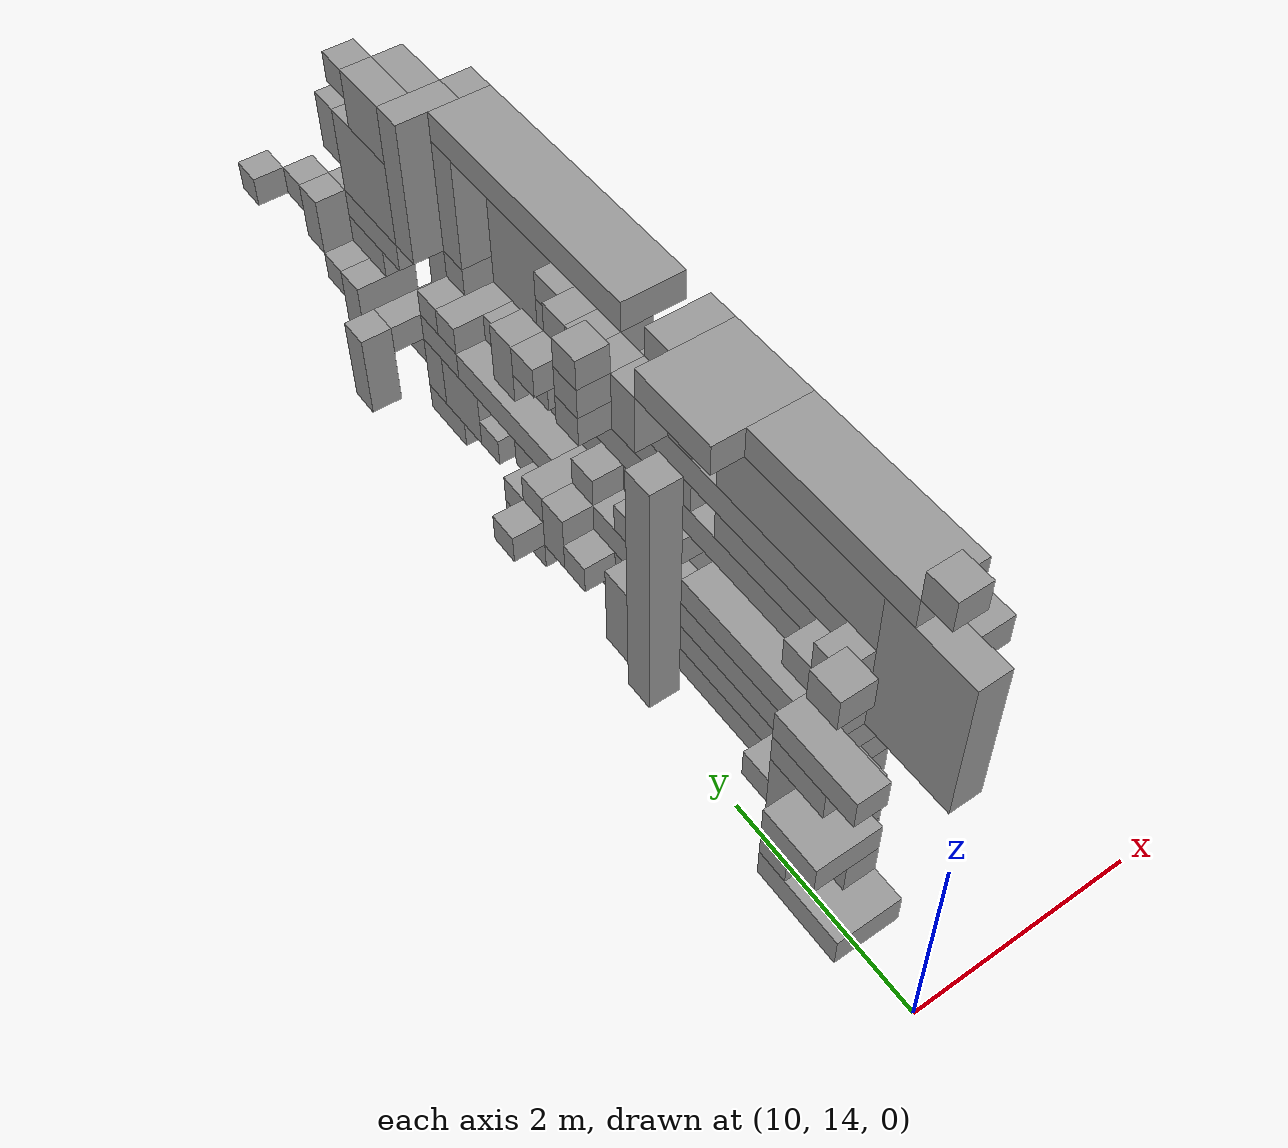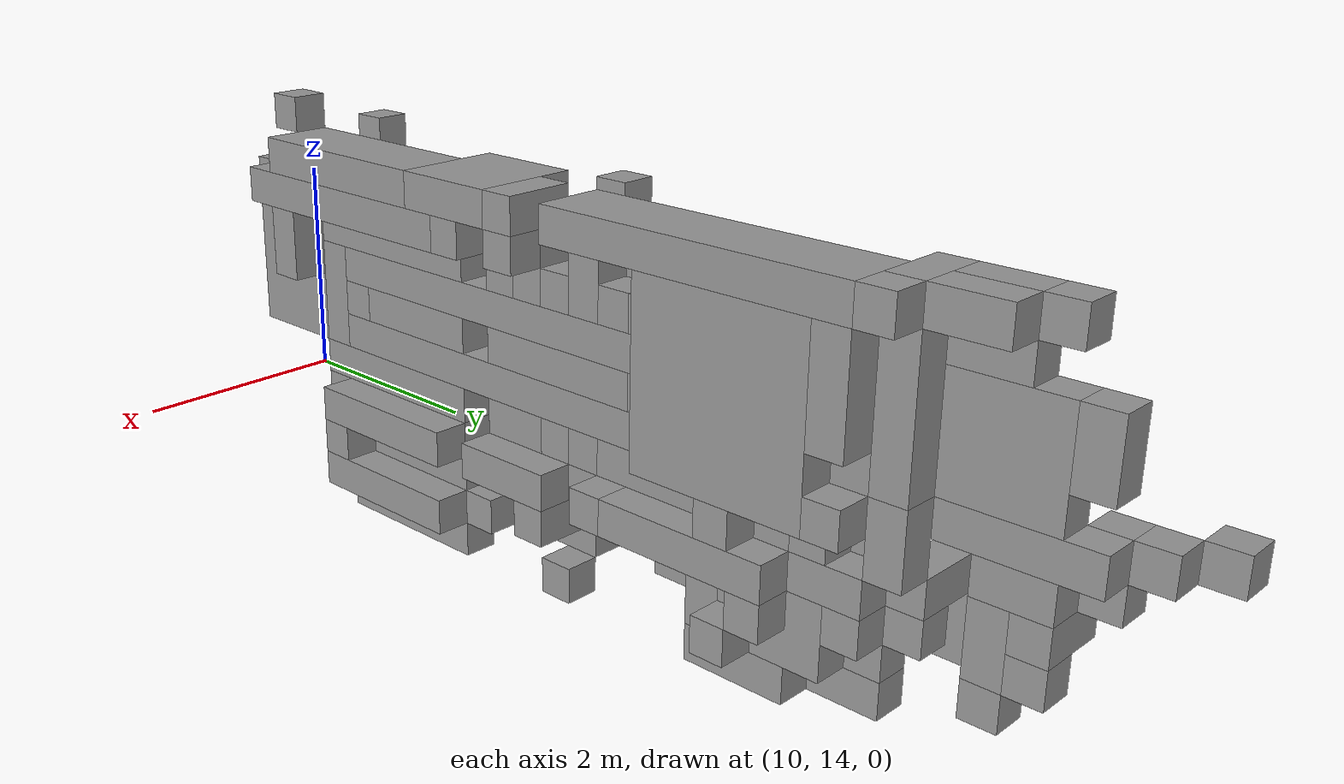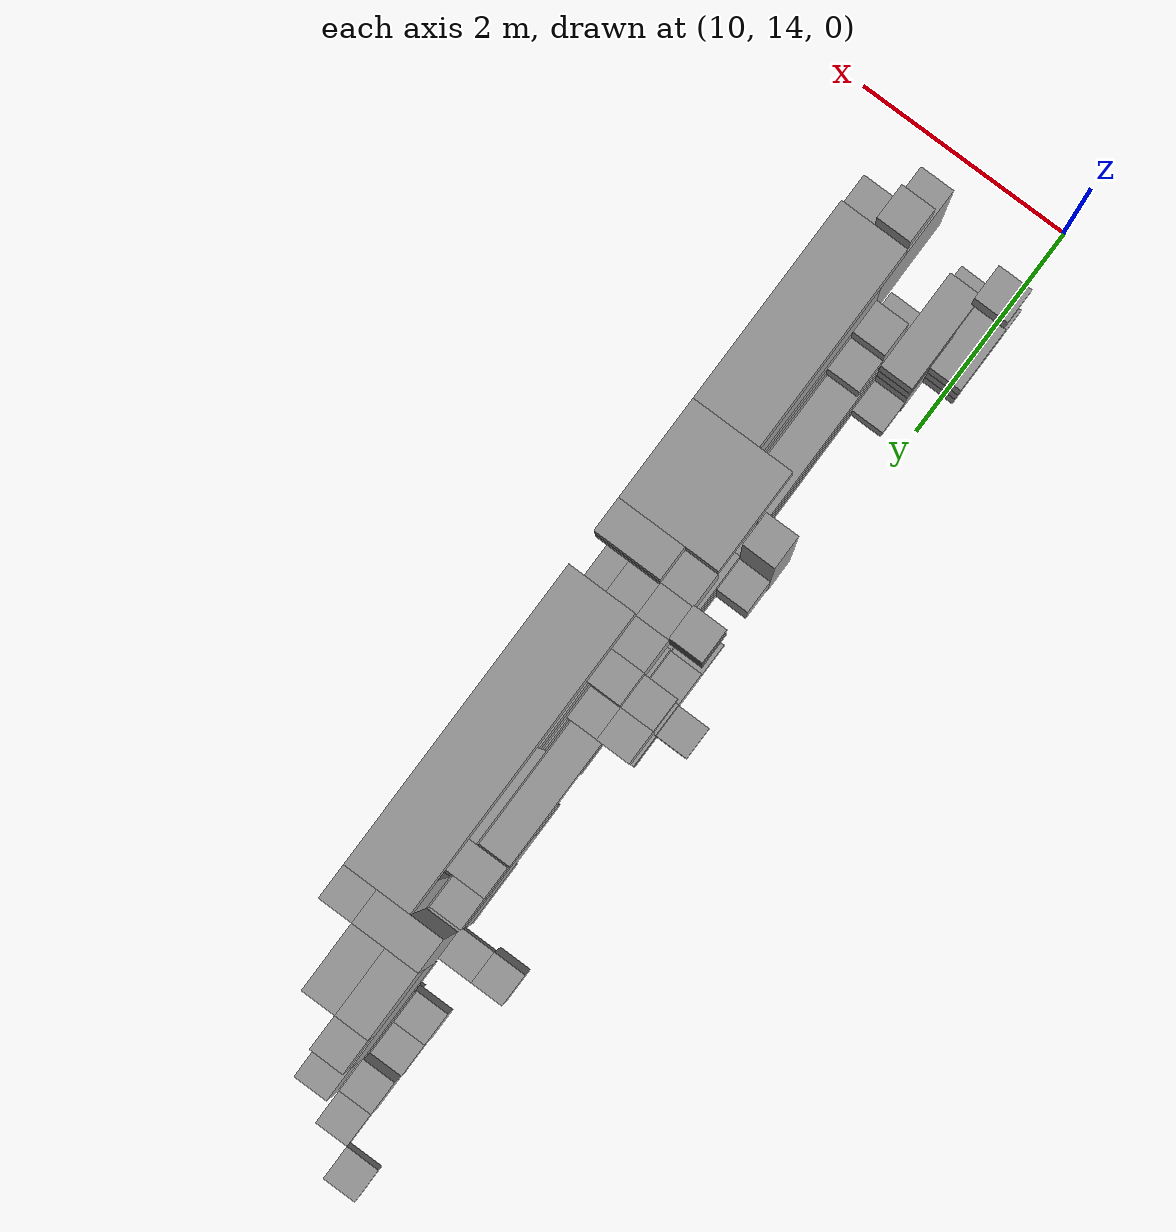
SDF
<sdf version="1.6">
 <world name="bt_world">
  <include><uri>model://sun</uri></include>
  <model name="obstacle_2677">
   <static>true</static>
   <pose>10.2 15.149999999999999 -0.15 0 0 0</pose>
   <link name="link">
    <collision name="collision">
     <geometry><box><size>0.6 0.8999999999999999 0.3</size></box></geometry>
    </collision>
    <visual name="visual">
     <geometry><box><size>0.6 0.8999999999999999 0.3</size></box></geometry>
     <material><ambient>0.5 0.5 0.5 1</ambient><diffuse>0.6 0.6 0.6 1</diffuse></material>
    </visual>
   </link>
  </model>
  <model name="obstacle_2679">
   <static>true</static>
   <pose>10.2 15.299999999999999 0.44999999999999996 0 0 0</pose>
   <link name="link">
    <collision name="collision"><geometry><box><size>0.6 0.6 0.3</size></box></geometry></collision>
    <visual name="visual">
     <geometry><box><size>0.6 0.6 0.3</size></box></geometry>
     <material><ambient>0.5 0.5 0.5 1</ambient><diffuse>0.6 0.6 0.6 1</diffuse></material>
    </visual>
   </link>
  </model>
  <model name="obstacle_2681">
   <static>true</static>
   <pose>10.049999999999999 15.149999999999999 2.55 0 0 0</pose>
   <link name="link">
    <collision name="collision"><geometry><box><size>0.3 0.3 0.3</size></box></geometry></collision>
    <visual name="visual">
     <geometry><box><size>0.3 0.3 0.3</size></box></geometry>
     <material><ambient>0.5 0.5 0.5 1</ambient><diffuse>0.6 0.6 0.6 1</diffuse></material>
    </visual>
   </link>
  </model>
  <model name="obstacle_2682">
   <static>true</static>
   <pose>10.35 15.45 0.15 0 0 0</pose>
   <link name="link">
    <collision name="collision">
     <geometry><box><size>0.8999999999999999 0.3 0.3</size></box></geometry>
    </collision>
    <visual name="visual">
     <geometry><box><size>0.8999999999999999 0.3 0.3</size></box></geometry>
     <material><ambient>0.5 0.5 0.5 1</ambient><diffuse>0.6 0.6 0.6 1</diffuse></material>
    </visual>
   </link>
  </model>
  <model name="obstacle_2683">
   <static>true</static>
   <pose>10.35 19.05 0.15 0 0 0</pose>
   <link name="link">
    <collision name="collision">
     <geometry><box><size>0.8999999999999999 0.3 0.3</size></box></geometry>
    </collision>
    <visual name="visual">
     <geometry><box><size>0.8999999999999999 0.3 0.3</size></box></geometry>
     <material><ambient>0.5 0.5 0.5 1</ambient><diffuse>0.6 0.6 0.6 1</diffuse></material>
    </visual>
   </link>
  </model>
  <model name="obstacle_2684">
   <static>true</static>
   <pose>10.049999999999999 21.45 0.15 0 0 0</pose>
   <link name="link">
    <collision name="collision">
     <geometry><box><size>0.3 0.3 0.8999999999999999</size></box></geometry>
    </collision>
    <visual name="visual">
     <geometry><box><size>0.3 0.3 0.8999999999999999</size></box></geometry>
     <material><ambient>0.5 0.5 0.5 1</ambient><diffuse>0.6 0.6 0.6 1</diffuse></material>
    </visual>
   </link>
  </model>
  <model name="obstacle_2685">
   <static>true</static>
   <pose>10.049999999999999 23.25 1.05 0 0 0</pose>
   <link name="link">
    <collision name="collision"><geometry><box><size>0.3 0.3 0.3</size></box></geometry></collision>
    <visual name="visual">
     <geometry><box><size>0.3 0.3 0.3</size></box></geometry>
     <material><ambient>0.5 0.5 0.5 1</ambient><diffuse>0.6 0.6 0.6 1</diffuse></material>
    </visual>
   </link>
  </model>
  <model name="obstacle_2688">
   <static>true</static>
   <pose>10.35 15.149999999999999 0.15 0 0 0</pose>
   <link name="link">
    <collision name="collision"><geometry><box><size>0.3 0.3 0.3</size></box></geometry></collision>
    <visual name="visual">
     <geometry><box><size>0.3 0.3 0.3</size></box></geometry>
     <material><ambient>0.5 0.5 0.5 1</ambient><diffuse>0.6 0.6 0.6 1</diffuse></material>
    </visual>
   </link>
  </model>
  <model name="obstacle_2689">
   <static>true</static>
   <pose>10.35 15.45 1.05 0 0 0</pose>
   <link name="link">
    <collision name="collision">
     <geometry><box><size>0.3 0.8999999999999999 0.3</size></box></geometry>
    </collision>
    <visual name="visual">
     <geometry><box><size>0.3 0.8999999999999999 0.3</size></box></geometry>
     <material><ambient>0.5 0.5 0.5 1</ambient><diffuse>0.6 0.6 0.6 1</diffuse></material>
    </visual>
   </link>
  </model>
  <model name="obstacle_2690">
   <static>true</static>
   <pose>10.35 15.6 0.75 0 0 0</pose>
   <link name="link">
    <collision name="collision"><geometry><box><size>0.3 0.6 0.3</size></box></geometry></collision>
    <visual name="visual">
     <geometry><box><size>0.3 0.6 0.3</size></box></geometry>
     <material><ambient>0.5 0.5 0.5 1</ambient><diffuse>0.6 0.6 0.6 1</diffuse></material>
    </visual>
   </link>
  </model>
  <model name="obstacle_2691">
   <static>true</static>
   <pose>10.35 15.75 0.15 0 0 0</pose>
   <link name="link">
    <collision name="collision">
     <geometry><box><size>0.3 0.3 0.8999999999999999</size></box></geometry>
    </collision>
    <visual name="visual">
     <geometry><box><size>0.3 0.3 0.8999999999999999</size></box></geometry>
     <material><ambient>0.5 0.5 0.5 1</ambient><diffuse>0.6 0.6 0.6 1</diffuse></material>
    </visual>
   </link>
  </model>
  <model name="obstacle_2692">
   <static>true</static>
   <pose>10.799999999999999 16.05 0.15 0 0 0</pose>
   <link name="link">
    <collision name="collision"><geometry><box><size>1.2 0.3 0.3</size></box></geometry></collision>
    <visual name="visual">
     <geometry><box><size>1.2 0.3 0.3</size></box></geometry>
     <material><ambient>0.5 0.5 0.5 1</ambient><diffuse>0.6 0.6 0.6 1</diffuse></material>
    </visual>
   </link>
  </model>
  <model name="obstacle_2693">
   <static>true</static>
   <pose>10.35 17.55 0.75 0 0 0</pose>
   <link name="link">
    <collision name="collision">
     <geometry><box><size>0.3 0.3 2.6999999999999997</size></box></geometry>
    </collision>
    <visual name="visual">
     <geometry><box><size>0.3 0.3 2.6999999999999997</size></box></geometry>
     <material><ambient>0.5 0.5 0.5 1</ambient><diffuse>0.6 0.6 0.6 1</diffuse></material>
    </visual>
   </link>
  </model>
  <model name="obstacle_2694">
   <static>true</static>
   <pose>10.35 17.849999999999998 0.15 0 0 0</pose>
   <link name="link">
    <collision name="collision">
     <geometry><box><size>0.3 0.3 0.8999999999999999</size></box></geometry>
    </collision>
    <visual name="visual">
     <geometry><box><size>0.3 0.3 0.8999999999999999</size></box></geometry>
     <material><ambient>0.5 0.5 0.5 1</ambient><diffuse>0.6 0.6 0.6 1</diffuse></material>
    </visual>
   </link>
  </model>
  <model name="obstacle_2695">
   <static>true</static>
   <pose>10.799999999999999 18.45 0.15 0 0 0</pose>
   <link name="link">
    <collision name="collision"><geometry><box><size>1.2 0.3 0.3</size></box></geometry></collision>
    <visual name="visual">
     <geometry><box><size>1.2 0.3 0.3</size></box></geometry>
     <material><ambient>0.5 0.5 0.5 1</ambient><diffuse>0.6 0.6 0.6 1</diffuse></material>
    </visual>
   </link>
  </model>
  <model name="obstacle_2696">
   <static>true</static>
   <pose>10.65 18.45 1.95 0 0 0</pose>
   <link name="link">
    <collision name="collision">
     <geometry><box><size>0.8999999999999999 0.3 0.3</size></box></geometry>
    </collision>
    <visual name="visual">
     <geometry><box><size>0.8999999999999999 0.3 0.3</size></box></geometry>
     <material><ambient>0.5 0.5 0.5 1</ambient><diffuse>0.6 0.6 0.6 1</diffuse></material>
    </visual>
   </link>
  </model>
  <model name="obstacle_2697">
   <static>true</static>
   <pose>10.5 18.45 2.25 0 0 0</pose>
   <link name="link">
    <collision name="collision"><geometry><box><size>0.6 0.3 0.3</size></box></geometry></collision>
    <visual name="visual">
     <geometry><box><size>0.6 0.3 0.3</size></box></geometry>
     <material><ambient>0.5 0.5 0.5 1</ambient><diffuse>0.6 0.6 0.6 1</diffuse></material>
    </visual>
   </link>
  </model>
  <model name="obstacle_2698">
   <static>true</static>
   <pose>10.35 18.45 2.55 0 0 0</pose>
   <link name="link">
    <collision name="collision"><geometry><box><size>0.3 0.3 0.3</size></box></geometry></collision>
    <visual name="visual">
     <geometry><box><size>0.3 0.3 0.3</size></box></geometry>
     <material><ambient>0.5 0.5 0.5 1</ambient><diffuse>0.6 0.6 0.6 1</diffuse></material>
    </visual>
   </link>
  </model>
  <model name="obstacle_2699">
   <static>true</static>
   <pose>10.5 18.75 0.3 0 0 0</pose>
   <link name="link">
    <collision name="collision"><geometry><box><size>0.6 0.3 0.6</size></box></geometry></collision>
    <visual name="visual">
     <geometry><box><size>0.6 0.3 0.6</size></box></geometry>
     <material><ambient>0.5 0.5 0.5 1</ambient><diffuse>0.6 0.6 0.6 1</diffuse></material>
    </visual>
   </link>
  </model>
  <model name="obstacle_2700">
   <static>true</static>
   <pose>10.35 19.2 -0.15 0 0 0</pose>
   <link name="link">
    <collision name="collision"><geometry><box><size>0.3 0.6 0.3</size></box></geometry></collision>
    <visual name="visual">
     <geometry><box><size>0.3 0.6 0.3</size></box></geometry>
     <material><ambient>0.5 0.5 0.5 1</ambient><diffuse>0.6 0.6 0.6 1</diffuse></material>
    </visual>
   </link>
  </model>
  <model name="obstacle_2701">
   <static>true</static>
   <pose>10.799999999999999 19.05 0.44999999999999996 0 0 0</pose>
   <link name="link">
    <collision name="collision"><geometry><box><size>1.2 0.3 0.3</size></box></geometry></collision>
    <visual name="visual">
     <geometry><box><size>1.2 0.3 0.3</size></box></geometry>
     <material><ambient>0.5 0.5 0.5 1</ambient><diffuse>0.6 0.6 0.6 1</diffuse></material>
    </visual>
   </link>
  </model>
  <model name="obstacle_2702">
   <static>true</static>
   <pose>10.65 19.05 1.95 0 0 0</pose>
   <link name="link">
    <collision name="collision">
     <geometry><box><size>0.8999999999999999 0.3 0.3</size></box></geometry>
    </collision>
    <visual name="visual">
     <geometry><box><size>0.8999999999999999 0.3 0.3</size></box></geometry>
     <material><ambient>0.5 0.5 0.5 1</ambient><diffuse>0.6 0.6 0.6 1</diffuse></material>
    </visual>
   </link>
  </model>
  <model name="obstacle_2703">
   <static>true</static>
   <pose>10.5 19.349999999999998 0.15 0 0 0</pose>
   <link name="link">
    <collision name="collision"><geometry><box><size>0.6 0.3 0.3</size></box></geometry></collision>
    <visual name="visual">
     <geometry><box><size>0.6 0.3 0.3</size></box></geometry>
     <material><ambient>0.5 0.5 0.5 1</ambient><diffuse>0.6 0.6 0.6 1</diffuse></material>
    </visual>
   </link>
  </model>
  <model name="obstacle_2704">
   <static>true</static>
   <pose>10.35 19.349999999999998 1.7999999999999998 0 0 0</pose>
   <link name="link">
    <collision name="collision"><geometry><box><size>0.3 0.3 0.6</size></box></geometry></collision>
    <visual name="visual">
     <geometry><box><size>0.3 0.3 0.6</size></box></geometry>
     <material><ambient>0.5 0.5 0.5 1</ambient><diffuse>0.6 0.6 0.6 1</diffuse></material>
    </visual>
   </link>
  </model>
  <model name="obstacle_2705">
   <static>true</static>
   <pose>10.5 21.45 0.44999999999999996 0 0 0</pose>
   <link name="link">
    <collision name="collision"><geometry><box><size>0.6 0.3 0.3</size></box></geometry></collision>
    <visual name="visual">
     <geometry><box><size>0.6 0.3 0.3</size></box></geometry>
     <material><ambient>0.5 0.5 0.5 1</ambient><diffuse>0.6 0.6 0.6 1</diffuse></material>
    </visual>
   </link>
  </model>
  <model name="obstacle_2706">
   <static>true</static>
   <pose>10.5 22.05 0.3 0 0 0</pose>
   <link name="link">
    <collision name="collision"><geometry><box><size>0.6 0.3 0.6</size></box></geometry></collision>
    <visual name="visual">
     <geometry><box><size>0.6 0.3 0.6</size></box></geometry>
     <material><ambient>0.5 0.5 0.5 1</ambient><diffuse>0.6 0.6 0.6 1</diffuse></material>
    </visual>
   </link>
  </model>
  <model name="obstacle_2707">
   <static>true</static>
   <pose>10.5 22.349999999999998 0.44999999999999996 0 0 0</pose>
   <link name="link">
    <collision name="collision"><geometry><box><size>0.6 0.3 0.3</size></box></geometry></collision>
    <visual name="visual">
     <geometry><box><size>0.6 0.3 0.3</size></box></geometry>
     <material><ambient>0.5 0.5 0.5 1</ambient><diffuse>0.6 0.6 0.6 1</diffuse></material>
    </visual>
   </link>
  </model>
  <model name="obstacle_2708">
   <static>true</static>
   <pose>10.35 22.65 0.8999999999999999 0 0 0</pose>
   <link name="link">
    <collision name="collision"><geometry><box><size>0.3 0.3 0.6</size></box></geometry></collision>
    <visual name="visual">
     <geometry><box><size>0.3 0.3 0.6</size></box></geometry>
     <material><ambient>0.5 0.5 0.5 1</ambient><diffuse>0.6 0.6 0.6 1</diffuse></material>
    </visual>
   </link>
  </model>
  <model name="obstacle_2709">
   <static>true</static>
   <pose>10.35 22.95 1.05 0 0 0</pose>
   <link name="link">
    <collision name="collision"><geometry><box><size>0.3 0.3 0.3</size></box></geometry></collision>
    <visual name="visual">
     <geometry><box><size>0.3 0.3 0.3</size></box></geometry>
     <material><ambient>0.5 0.5 0.5 1</ambient><diffuse>0.6 0.6 0.6 1</diffuse></material>
    </visual>
   </link>
  </model>
  <model name="obstacle_2717">
   <static>true</static>
   <pose>10.65 15.45 -0.15 0 0 0</pose>
   <link name="link">
    <collision name="collision"><geometry><box><size>0.3 0.3 0.3</size></box></geometry></collision>
    <visual name="visual">
     <geometry><box><size>0.3 0.3 0.3</size></box></geometry>
     <material><ambient>0.5 0.5 0.5 1</ambient><diffuse>0.6 0.6 0.6 1</diffuse></material>
    </visual>
   </link>
  </model>
  <model name="obstacle_2718">
   <static>true</static>
   <pose>10.65 16.95 0.44999999999999996 0 0 0</pose>
   <link name="link">
    <collision name="collision"><geometry><box><size>0.3 3.3 0.3</size></box></geometry></collision>
    <visual name="visual">
     <geometry><box><size>0.3 3.3 0.3</size></box></geometry>
     <material><ambient>0.5 0.5 0.5 1</ambient><diffuse>0.6 0.6 0.6 1</diffuse></material>
    </visual>
   </link>
  </model>
  <model name="obstacle_2719">
   <static>true</static>
   <pose>10.799999999999999 15.75 0.15 0 0 0</pose>
   <link name="link">
    <collision name="collision"><geometry><box><size>0.6 0.3 0.3</size></box></geometry></collision>
    <visual name="visual">
     <geometry><box><size>0.6 0.3 0.3</size></box></geometry>
     <material><ambient>0.5 0.5 0.5 1</ambient><diffuse>0.6 0.6 0.6 1</diffuse></material>
    </visual>
   </link>
  </model>
  <model name="obstacle_2720">
   <static>true</static>
   <pose>10.799999999999999 16.5 0.75 0 0 0</pose>
   <link name="link">
    <collision name="collision">
     <geometry><box><size>0.6 1.7999999999999998 0.3</size></box></geometry>
    </collision>
    <visual name="visual">
     <geometry><box><size>0.6 1.7999999999999998 0.3</size></box></geometry>
     <material><ambient>0.5 0.5 0.5 1</ambient><diffuse>0.6 0.6 0.6 1</diffuse></material>
    </visual>
   </link>
  </model>
  <model name="obstacle_2721">
   <static>true</static>
   <pose>10.799999999999999 15.75 1.3499999999999999 0 0 0</pose>
   <link name="link">
    <collision name="collision">
     <geometry><box><size>0.6 0.3 0.8999999999999999</size></box></geometry>
    </collision>
    <visual name="visual">
     <geometry><box><size>0.6 0.3 0.8999999999999999</size></box></geometry>
     <material><ambient>0.5 0.5 0.5 1</ambient><diffuse>0.6 0.6 0.6 1</diffuse></material>
    </visual>
   </link>
  </model>
  <model name="obstacle_2722">
   <static>true</static>
   <pose>10.95 16.65 -0.15 0 0 0</pose>
   <link name="link">
    <collision name="collision">
     <geometry><box><size>0.8999999999999999 1.5 0.3</size></box></geometry>
    </collision>
    <visual name="visual">
     <geometry><box><size>0.8999999999999999 1.5 0.3</size></box></geometry>
     <material><ambient>0.5 0.5 0.5 1</ambient><diffuse>0.6 0.6 0.6 1</diffuse></material>
    </visual>
   </link>
  </model>
  <model name="obstacle_2723">
   <static>true</static>
   <pose>10.799999999999999 16.05 1.3499999999999999 0 0 0</pose>
   <link name="link">
    <collision name="collision"><geometry><box><size>0.6 0.3 0.3</size></box></geometry></collision>
    <visual name="visual">
     <geometry><box><size>0.6 0.3 0.3</size></box></geometry>
     <material><ambient>0.5 0.5 0.5 1</ambient><diffuse>0.6 0.6 0.6 1</diffuse></material>
    </visual>
   </link>
  </model>
  <model name="obstacle_2724">
   <static>true</static>
   <pose>10.799999999999999 16.8 0.15 0 0 0</pose>
   <link name="link">
    <collision name="collision"><geometry><box><size>0.6 1.2 0.3</size></box></geometry></collision>
    <visual name="visual">
     <geometry><box><size>0.6 1.2 0.3</size></box></geometry>
     <material><ambient>0.5 0.5 0.5 1</ambient><diffuse>0.6 0.6 0.6 1</diffuse></material>
    </visual>
   </link>
  </model>
  <model name="obstacle_2725">
   <static>true</static>
   <pose>10.95 17.55 2.55 0 0 0</pose>
   <link name="link">
    <collision name="collision">
     <geometry><box><size>0.8999999999999999 0.8999999999999999 0.3</size></box></geometry>
    </collision>
    <visual name="visual">
     <geometry><box><size>0.8999999999999999 0.8999999999999999 0.3</size></box></geometry>
     <material><ambient>0.5 0.5 0.5 1</ambient><diffuse>0.6 0.6 0.6 1</diffuse></material>
    </visual>
   </link>
  </model>
  <model name="obstacle_2726">
   <static>true</static>
   <pose>10.65 17.849999999999998 0.15 0 0 0</pose>
   <link name="link">
    <collision name="collision">
     <geometry><box><size>0.3 0.8999999999999999 0.3</size></box></geometry>
    </collision>
    <visual name="visual">
     <geometry><box><size>0.3 0.8999999999999999 0.3</size></box></geometry>
     <material><ambient>0.5 0.5 0.5 1</ambient><diffuse>0.6 0.6 0.6 1</diffuse></material>
    </visual>
   </link>
  </model>
  <model name="obstacle_2727">
   <static>true</static>
   <pose>10.799999999999999 18.0 0.75 0 0 0</pose>
   <link name="link">
    <collision name="collision"><geometry><box><size>0.6 0.6 0.3</size></box></geometry></collision>
    <visual name="visual">
     <geometry><box><size>0.6 0.6 0.3</size></box></geometry>
     <material><ambient>0.5 0.5 0.5 1</ambient><diffuse>0.6 0.6 0.6 1</diffuse></material>
    </visual>
   </link>
  </model>
  <model name="obstacle_2728">
   <static>true</static>
   <pose>10.65 18.3 -0.15 0 0 0</pose>
   <link name="link">
    <collision name="collision"><geometry><box><size>0.3 0.6 0.3</size></box></geometry></collision>
    <visual name="visual">
     <geometry><box><size>0.3 0.6 0.3</size></box></geometry>
     <material><ambient>0.5 0.5 0.5 1</ambient><diffuse>0.6 0.6 0.6 1</diffuse></material>
    </visual>
   </link>
  </model>
  <model name="obstacle_2729">
   <static>true</static>
   <pose>10.799999999999999 18.15 2.1 0 0 0</pose>
   <link name="link">
    <collision name="collision"><geometry><box><size>0.6 0.3 0.6</size></box></geometry></collision>
    <visual name="visual">
     <geometry><box><size>0.6 0.3 0.6</size></box></geometry>
     <material><ambient>0.5 0.5 0.5 1</ambient><diffuse>0.6 0.6 0.6 1</diffuse></material>
    </visual>
   </link>
  </model>
  <model name="obstacle_2730">
   <static>true</static>
   <pose>10.799999999999999 18.75 0.75 0 0 0</pose>
   <link name="link">
    <collision name="collision"><geometry><box><size>0.6 0.3 0.3</size></box></geometry></collision>
    <visual name="visual">
     <geometry><box><size>0.6 0.3 0.3</size></box></geometry>
     <material><ambient>0.5 0.5 0.5 1</ambient><diffuse>0.6 0.6 0.6 1</diffuse></material>
    </visual>
   </link>
  </model>
  <model name="obstacle_2731">
   <static>true</static>
   <pose>10.799999999999999 18.75 2.1 0 0 0</pose>
   <link name="link">
    <collision name="collision"><geometry><box><size>0.6 0.3 0.6</size></box></geometry></collision>
    <visual name="visual">
     <geometry><box><size>0.6 0.3 0.6</size></box></geometry>
     <material><ambient>0.5 0.5 0.5 1</ambient><diffuse>0.6 0.6 0.6 1</diffuse></material>
    </visual>
   </link>
  </model>
  <model name="obstacle_2732">
   <static>true</static>
   <pose>10.65 19.05 2.25 0 0 0</pose>
   <link name="link">
    <collision name="collision"><geometry><box><size>0.3 0.3 0.3</size></box></geometry></collision>
    <visual name="visual">
     <geometry><box><size>0.3 0.3 0.3</size></box></geometry>
     <material><ambient>0.5 0.5 0.5 1</ambient><diffuse>0.6 0.6 0.6 1</diffuse></material>
    </visual>
   </link>
  </model>
  <model name="obstacle_2733">
   <static>true</static>
   <pose>10.95 19.95 0.44999999999999996 0 0 0</pose>
   <link name="link">
    <collision name="collision">
     <geometry><box><size>0.8999999999999999 1.5 0.3</size></box></geometry>
    </collision>
    <visual name="visual">
     <geometry><box><size>0.8999999999999999 1.5 0.3</size></box></geometry>
     <material><ambient>0.5 0.5 0.5 1</ambient><diffuse>0.6 0.6 0.6 1</diffuse></material>
    </visual>
   </link>
  </model>
  <model name="obstacle_2734">
   <static>true</static>
   <pose>10.799999999999999 19.349999999999998 1.3499999999999999 0 0 0</pose>
   <link name="link">
    <collision name="collision"><geometry><box><size>0.6 0.3 0.3</size></box></geometry></collision>
    <visual name="visual">
     <geometry><box><size>0.6 0.3 0.3</size></box></geometry>
     <material><ambient>0.5 0.5 0.5 1</ambient><diffuse>0.6 0.6 0.6 1</diffuse></material>
    </visual>
   </link>
  </model>
  <model name="obstacle_2735">
   <static>true</static>
   <pose>10.799999999999999 19.65 0.15 0 0 0</pose>
   <link name="link">
    <collision name="collision"><geometry><box><size>0.6 0.3 0.3</size></box></geometry></collision>
    <visual name="visual">
     <geometry><box><size>0.6 0.3 0.3</size></box></geometry>
     <material><ambient>0.5 0.5 0.5 1</ambient><diffuse>0.6 0.6 0.6 1</diffuse></material>
    </visual>
   </link>
  </model>
  <model name="obstacle_2736">
   <static>true</static>
   <pose>10.95 20.25 -0.15 0 0 0</pose>
   <link name="link">
    <collision name="collision">
     <geometry><box><size>0.8999999999999999 0.3 0.3</size></box></geometry>
    </collision>
    <visual name="visual">
     <geometry><box><size>0.8999999999999999 0.3 0.3</size></box></geometry>
     <material><ambient>0.5 0.5 0.5 1</ambient><diffuse>0.6 0.6 0.6 1</diffuse></material>
    </visual>
   </link>
  </model>
  <model name="obstacle_2737">
   <static>true</static>
   <pose>10.799999999999999 20.7 0.0 0 0 0</pose>
   <link name="link">
    <collision name="collision"><geometry><box><size>0.6 0.6 0.6</size></box></geometry></collision>
    <visual name="visual">
     <geometry><box><size>0.6 0.6 0.6</size></box></geometry>
     <material><ambient>0.5 0.5 0.5 1</ambient><diffuse>0.6 0.6 0.6 1</diffuse></material>
    </visual>
   </link>
  </model>
  <model name="obstacle_2738">
   <static>true</static>
   <pose>10.65 21.0 -0.44999999999999996 0 0 0</pose>
   <link name="link">
    <collision name="collision"><geometry><box><size>0.3 0.6 0.3</size></box></geometry></collision>
    <visual name="visual">
     <geometry><box><size>0.3 0.6 0.3</size></box></geometry>
     <material><ambient>0.5 0.5 0.5 1</ambient><diffuse>0.6 0.6 0.6 1</diffuse></material>
    </visual>
   </link>
  </model>
  <model name="obstacle_2739">
   <static>true</static>
   <pose>10.799999999999999 21.0 0.44999999999999996 0 0 0</pose>
   <link name="link">
    <collision name="collision"><geometry><box><size>0.6 0.6 0.3</size></box></geometry></collision>
    <visual name="visual">
     <geometry><box><size>0.6 0.6 0.3</size></box></geometry>
     <material><ambient>0.5 0.5 0.5 1</ambient><diffuse>0.6 0.6 0.6 1</diffuse></material>
    </visual>
   </link>
  </model>
  <model name="obstacle_2740">
   <static>true</static>
   <pose>10.799999999999999 20.849999999999998 0.75 0 0 0</pose>
   <link name="link">
    <collision name="collision"><geometry><box><size>0.6 0.3 0.3</size></box></geometry></collision>
    <visual name="visual">
     <geometry><box><size>0.6 0.3 0.3</size></box></geometry>
     <material><ambient>0.5 0.5 0.5 1</ambient><diffuse>0.6 0.6 0.6 1</diffuse></material>
    </visual>
   </link>
  </model>
  <model name="obstacle_2741">
   <static>true</static>
   <pose>10.65 21.15 0.0 0 0 0</pose>
   <link name="link">
    <collision name="collision"><geometry><box><size>0.3 0.3 0.6</size></box></geometry></collision>
    <visual name="visual">
     <geometry><box><size>0.3 0.3 0.6</size></box></geometry>
     <material><ambient>0.5 0.5 0.5 1</ambient><diffuse>0.6 0.6 0.6 1</diffuse></material>
    </visual>
   </link>
  </model>
  <model name="obstacle_2742">
   <static>true</static>
   <pose>10.65 21.15 0.75 0 0 0</pose>
   <link name="link">
    <collision name="collision"><geometry><box><size>0.3 0.3 0.3</size></box></geometry></collision>
    <visual name="visual">
     <geometry><box><size>0.3 0.3 0.3</size></box></geometry>
     <material><ambient>0.5 0.5 0.5 1</ambient><diffuse>0.6 0.6 0.6 1</diffuse></material>
    </visual>
   </link>
  </model>
  <model name="obstacle_2743">
   <static>true</static>
   <pose>10.65 21.45 0.15 0 0 0</pose>
   <link name="link">
    <collision name="collision"><geometry><box><size>0.3 0.3 0.3</size></box></geometry></collision>
    <visual name="visual">
     <geometry><box><size>0.3 0.3 0.3</size></box></geometry>
     <material><ambient>0.5 0.5 0.5 1</ambient><diffuse>0.6 0.6 0.6 1</diffuse></material>
    </visual>
   </link>
  </model>
  <model name="obstacle_2744">
   <static>true</static>
   <pose>10.799999999999999 21.45 1.95 0 0 0</pose>
   <link name="link">
    <collision name="collision"><geometry><box><size>0.6 0.3 1.5</size></box></geometry></collision>
    <visual name="visual">
     <geometry><box><size>0.6 0.3 1.5</size></box></geometry>
     <material><ambient>0.5 0.5 0.5 1</ambient><diffuse>0.6 0.6 0.6 1</diffuse></material>
    </visual>
   </link>
  </model>
  <model name="obstacle_2745">
   <static>true</static>
   <pose>10.65 22.2 1.05 0 0 0</pose>
   <link name="link">
    <collision name="collision"><geometry><box><size>0.3 1.2 0.3</size></box></geometry></collision>
    <visual name="visual">
     <geometry><box><size>0.3 1.2 0.3</size></box></geometry>
     <material><ambient>0.5 0.5 0.5 1</ambient><diffuse>0.6 0.6 0.6 1</diffuse></material>
    </visual>
   </link>
  </model>
  <model name="obstacle_2746">
   <static>true</static>
   <pose>10.65 22.05 1.65 0 0 0</pose>
   <link name="link">
    <collision name="collision">
     <geometry><box><size>0.3 0.8999999999999999 0.8999999999999999</size></box></geometry>
    </collision>
    <visual name="visual">
     <geometry><box><size>0.3 0.8999999999999999 0.8999999999999999</size></box></geometry>
     <material><ambient>0.5 0.5 0.5 1</ambient><diffuse>0.6 0.6 0.6 1</diffuse></material>
    </visual>
   </link>
  </model>
  <model name="obstacle_2747">
   <static>true</static>
   <pose>10.65 21.9 2.4 0 0 0</pose>
   <link name="link">
    <collision name="collision"><geometry><box><size>0.3 0.6 0.6</size></box></geometry></collision>
    <visual name="visual">
     <geometry><box><size>0.3 0.6 0.6</size></box></geometry>
     <material><ambient>0.5 0.5 0.5 1</ambient><diffuse>0.6 0.6 0.6 1</diffuse></material>
    </visual>
   </link>
  </model>
  <model name="obstacle_2748">
   <static>true</static>
   <pose>10.65 22.05 -0.15 0 0 0</pose>
   <link name="link">
    <collision name="collision"><geometry><box><size>0.3 0.3 0.3</size></box></geometry></collision>
    <visual name="visual">
     <geometry><box><size>0.3 0.3 0.3</size></box></geometry>
     <material><ambient>0.5 0.5 0.5 1</ambient><diffuse>0.6 0.6 0.6 1</diffuse></material>
    </visual>
   </link>
  </model>
  <model name="obstacle_2749">
   <static>true</static>
   <pose>10.65 22.2 0.75 0 0 0</pose>
   <link name="link">
    <collision name="collision"><geometry><box><size>0.3 0.6 0.3</size></box></geometry></collision>
    <visual name="visual">
     <geometry><box><size>0.3 0.6 0.3</size></box></geometry>
     <material><ambient>0.5 0.5 0.5 1</ambient><diffuse>0.6 0.6 0.6 1</diffuse></material>
    </visual>
   </link>
  </model>
  <model name="obstacle_2750">
   <static>true</static>
   <pose>10.65 22.349999999999998 0.15 0 0 0</pose>
   <link name="link">
    <collision name="collision"><geometry><box><size>0.3 0.3 0.3</size></box></geometry></collision>
    <visual name="visual">
     <geometry><box><size>0.3 0.3 0.3</size></box></geometry>
     <material><ambient>0.5 0.5 0.5 1</ambient><diffuse>0.6 0.6 0.6 1</diffuse></material>
    </visual>
   </link>
  </model>
  <model name="obstacle_2751">
   <static>true</static>
   <pose>10.65 22.349999999999998 2.55 0 0 0</pose>
   <link name="link">
    <collision name="collision"><geometry><box><size>0.3 0.3 0.3</size></box></geometry></collision>
    <visual name="visual">
     <geometry><box><size>0.3 0.3 0.3</size></box></geometry>
     <material><ambient>0.5 0.5 0.5 1</ambient><diffuse>0.6 0.6 0.6 1</diffuse></material>
    </visual>
   </link>
  </model>
  <model name="obstacle_2752">
   <static>true</static>
   <pose>10.65 22.65 1.7999999999999998 0 0 0</pose>
   <link name="link">
    <collision name="collision"><geometry><box><size>0.3 0.3 0.6</size></box></geometry></collision>
    <visual name="visual">
     <geometry><box><size>0.3 0.3 0.6</size></box></geometry>
     <material><ambient>0.5 0.5 0.5 1</ambient><diffuse>0.6 0.6 0.6 1</diffuse></material>
    </visual>
   </link>
  </model>
  <model name="obstacle_2754">
   <static>true</static>
   <pose>10.95 15.149999999999999 1.65 0 0 0</pose>
   <link name="link">
    <collision name="collision">
     <geometry><box><size>0.3 0.8999999999999999 1.5</size></box></geometry>
    </collision>
    <visual name="visual">
     <geometry><box><size>0.3 0.8999999999999999 1.5</size></box></geometry>
     <material><ambient>0.5 0.5 0.5 1</ambient><diffuse>0.6 0.6 0.6 1</diffuse></material>
    </visual>
   </link>
  </model>
  <model name="obstacle_2755">
   <static>true</static>
   <pose>10.95 15.149999999999999 2.85 0 0 0</pose>
   <link name="link">
    <collision name="collision"><geometry><box><size>0.3 0.3 0.3</size></box></geometry></collision>
    <visual name="visual">
     <geometry><box><size>0.3 0.3 0.3</size></box></geometry>
     <material><ambient>0.5 0.5 0.5 1</ambient><diffuse>0.6 0.6 0.6 1</diffuse></material>
    </visual>
   </link>
  </model>
  <model name="obstacle_2756">
   <static>true</static>
   <pose>11.1 16.2 2.55 0 0 0</pose>
   <link name="link">
    <collision name="collision">
     <geometry><box><size>0.6 1.7999999999999998 0.3</size></box></geometry>
    </collision>
    <visual name="visual">
     <geometry><box><size>0.6 1.7999999999999998 0.3</size></box></geometry>
     <material><ambient>0.5 0.5 0.5 1</ambient><diffuse>0.6 0.6 0.6 1</diffuse></material>
    </visual>
   </link>
  </model>
  <model name="obstacle_2757">
   <static>true</static>
   <pose>10.95 16.5 0.44999999999999996 0 0 0</pose>
   <link name="link">
    <collision name="collision">
     <geometry><box><size>0.3 1.7999999999999998 0.3</size></box></geometry>
    </collision>
    <visual name="visual">
     <geometry><box><size>0.3 1.7999999999999998 0.3</size></box></geometry>
     <material><ambient>0.5 0.5 0.5 1</ambient><diffuse>0.6 0.6 0.6 1</diffuse></material>
    </visual>
   </link>
  </model>
  <model name="obstacle_2758">
   <static>true</static>
   <pose>10.95 16.5 2.1 0 0 0</pose>
   <link name="link">
    <collision name="collision">
     <geometry><box><size>0.3 1.7999999999999998 0.6</size></box></geometry>
    </collision>
    <visual name="visual">
     <geometry><box><size>0.3 1.7999999999999998 0.6</size></box></geometry>
     <material><ambient>0.5 0.5 0.5 1</ambient><diffuse>0.6 0.6 0.6 1</diffuse></material>
    </visual>
   </link>
  </model>
  <model name="obstacle_2759">
   <static>true</static>
   <pose>10.95 16.65 -0.44999999999999996 0 0 0</pose>
   <link name="link">
    <collision name="collision"><geometry><box><size>0.3 1.5 0.3</size></box></geometry></collision>
    <visual name="visual">
     <geometry><box><size>0.3 1.5 0.3</size></box></geometry>
     <material><ambient>0.5 0.5 0.5 1</ambient><diffuse>0.6 0.6 0.6 1</diffuse></material>
    </visual>
   </link>
  </model>
  <model name="obstacle_2760">
   <static>true</static>
   <pose>10.95 17.849999999999998 1.05 0 0 0</pose>
   <link name="link">
    <collision name="collision"><geometry><box><size>0.3 3.9 0.3</size></box></geometry></collision>
    <visual name="visual">
     <geometry><box><size>0.3 3.9 0.3</size></box></geometry>
     <material><ambient>0.5 0.5 0.5 1</ambient><diffuse>0.6 0.6 0.6 1</diffuse></material>
    </visual>
   </link>
  </model>
  <model name="obstacle_2761">
   <static>true</static>
   <pose>10.95 17.849999999999998 1.65 0 0 0</pose>
   <link name="link">
    <collision name="collision"><geometry><box><size>0.3 3.9 0.3</size></box></geometry></collision>
    <visual name="visual">
     <geometry><box><size>0.3 3.9 0.3</size></box></geometry>
     <material><ambient>0.5 0.5 0.5 1</ambient><diffuse>0.6 0.6 0.6 1</diffuse></material>
    </visual>
   </link>
  </model>
  <model name="obstacle_2762">
   <static>true</static>
   <pose>10.95 16.8 1.3499999999999999 0 0 0</pose>
   <link name="link">
    <collision name="collision"><geometry><box><size>0.3 1.2 0.3</size></box></geometry></collision>
    <visual name="visual">
     <geometry><box><size>0.3 1.2 0.3</size></box></geometry>
     <material><ambient>0.5 0.5 0.5 1</ambient><diffuse>0.6 0.6 0.6 1</diffuse></material>
    </visual>
   </link>
  </model>
  <model name="obstacle_2763">
   <static>true</static>
   <pose>10.95 17.55 -0.15 0 0 0</pose>
   <link name="link">
    <collision name="collision"><geometry><box><size>0.3 0.3 0.3</size></box></geometry></collision>
    <visual name="visual">
     <geometry><box><size>0.3 0.3 0.3</size></box></geometry>
     <material><ambient>0.5 0.5 0.5 1</ambient><diffuse>0.6 0.6 0.6 1</diffuse></material>
    </visual>
   </link>
  </model>
  <model name="obstacle_2764">
   <static>true</static>
   <pose>11.1 17.55 2.25 0 0 0</pose>
   <link name="link">
    <collision name="collision"><geometry><box><size>0.6 0.3 0.3</size></box></geometry></collision>
    <visual name="visual">
     <geometry><box><size>0.6 0.3 0.3</size></box></geometry>
     <material><ambient>0.5 0.5 0.5 1</ambient><diffuse>0.6 0.6 0.6 1</diffuse></material>
    </visual>
   </link>
  </model>
  <model name="obstacle_2765">
   <static>true</static>
   <pose>11.1 18.15 0.44999999999999996 0 0 0</pose>
   <link name="link">
    <collision name="collision">
     <geometry><box><size>0.6 0.8999999999999999 0.3</size></box></geometry>
    </collision>
    <visual name="visual">
     <geometry><box><size>0.6 0.8999999999999999 0.3</size></box></geometry>
     <material><ambient>0.5 0.5 0.5 1</ambient><diffuse>0.6 0.6 0.6 1</diffuse></material>
    </visual>
   </link>
  </model>
  <model name="obstacle_2766">
   <static>true</static>
   <pose>10.95 18.45 1.3499999999999999 0 0 0</pose>
   <link name="link">
    <collision name="collision"><geometry><box><size>0.3 1.5 0.3</size></box></geometry></collision>
    <visual name="visual">
     <geometry><box><size>0.3 1.5 0.3</size></box></geometry>
     <material><ambient>0.5 0.5 0.5 1</ambient><diffuse>0.6 0.6 0.6 1</diffuse></material>
    </visual>
   </link>
  </model>
  <model name="obstacle_2767">
   <static>true</static>
   <pose>10.95 17.849999999999998 2.1 0 0 0</pose>
   <link name="link">
    <collision name="collision"><geometry><box><size>0.3 0.3 0.6</size></box></geometry></collision>
    <visual name="visual">
     <geometry><box><size>0.3 0.3 0.6</size></box></geometry>
     <material><ambient>0.5 0.5 0.5 1</ambient><diffuse>0.6 0.6 0.6 1</diffuse></material>
    </visual>
   </link>
  </model>
  <model name="obstacle_2768">
   <static>true</static>
   <pose>10.95 18.15 0.15 0 0 0</pose>
   <link name="link">
    <collision name="collision"><geometry><box><size>0.3 0.3 0.3</size></box></geometry></collision>
    <visual name="visual">
     <geometry><box><size>0.3 0.3 0.3</size></box></geometry>
     <material><ambient>0.5 0.5 0.5 1</ambient><diffuse>0.6 0.6 0.6 1</diffuse></material>
    </visual>
   </link>
  </model>
  <model name="obstacle_2769">
   <static>true</static>
   <pose>11.1 18.15 2.55 0 0 0</pose>
   <link name="link">
    <collision name="collision"><geometry><box><size>0.6 0.3 0.3</size></box></geometry></collision>
    <visual name="visual">
     <geometry><box><size>0.6 0.3 0.3</size></box></geometry>
     <material><ambient>0.5 0.5 0.5 1</ambient><diffuse>0.6 0.6 0.6 1</diffuse></material>
    </visual>
   </link>
  </model>
  <model name="obstacle_2770">
   <static>true</static>
   <pose>10.95 18.45 -0.44999999999999996 0 0 0</pose>
   <link name="link">
    <collision name="collision"><geometry><box><size>0.3 0.3 0.3</size></box></geometry></collision>
    <visual name="visual">
     <geometry><box><size>0.3 0.3 0.3</size></box></geometry>
     <material><ambient>0.5 0.5 0.5 1</ambient><diffuse>0.6 0.6 0.6 1</diffuse></material>
    </visual>
   </link>
  </model>
  <model name="obstacle_2771">
   <static>true</static>
   <pose>10.95 18.45 0.75 0 0 0</pose>
   <link name="link">
    <collision name="collision"><geometry><box><size>0.3 0.3 0.3</size></box></geometry></collision>
    <visual name="visual">
     <geometry><box><size>0.3 0.3 0.3</size></box></geometry>
     <material><ambient>0.5 0.5 0.5 1</ambient><diffuse>0.6 0.6 0.6 1</diffuse></material>
    </visual>
   </link>
  </model>
  <model name="obstacle_2772">
   <static>true</static>
   <pose>10.95 18.75 0.44999999999999996 0 0 0</pose>
   <link name="link">
    <collision name="collision"><geometry><box><size>0.3 0.3 0.3</size></box></geometry></collision>
    <visual name="visual">
     <geometry><box><size>0.3 0.3 0.3</size></box></geometry>
     <material><ambient>0.5 0.5 0.5 1</ambient><diffuse>0.6 0.6 0.6 1</diffuse></material>
    </visual>
   </link>
  </model>
  <model name="obstacle_2773">
   <static>true</static>
   <pose>11.1 19.95 2.55 0 0 0</pose>
   <link name="link">
    <collision name="collision">
     <geometry><box><size>0.6 2.6999999999999997 0.3</size></box></geometry>
    </collision>
    <visual name="visual">
     <geometry><box><size>0.6 2.6999999999999997 0.3</size></box></geometry>
     <material><ambient>0.5 0.5 0.5 1</ambient><diffuse>0.6 0.6 0.6 1</diffuse></material>
    </visual>
   </link>
  </model>
  <model name="obstacle_2774">
   <static>true</static>
   <pose>10.95 19.8 0.75 0 0 0</pose>
   <link name="link">
    <collision name="collision">
     <geometry><box><size>0.3 1.7999999999999998 0.3</size></box></geometry>
    </collision>
    <visual name="visual">
     <geometry><box><size>0.3 1.7999999999999998 0.3</size></box></geometry>
     <material><ambient>0.5 0.5 0.5 1</ambient><diffuse>0.6 0.6 0.6 1</diffuse></material>
    </visual>
   </link>
  </model>
  <model name="obstacle_2775">
   <static>true</static>
   <pose>10.95 19.5 1.95 0 0 0</pose>
   <link name="link">
    <collision name="collision"><geometry><box><size>0.3 0.6 0.3</size></box></geometry></collision>
    <visual name="visual">
     <geometry><box><size>0.3 0.6 0.3</size></box></geometry>
     <material><ambient>0.5 0.5 0.5 1</ambient><diffuse>0.6 0.6 0.6 1</diffuse></material>
    </visual>
   </link>
  </model>
  <model name="obstacle_2776">
   <static>true</static>
   <pose>10.95 20.25 -0.44999999999999996 0 0 0</pose>
   <link name="link">
    <collision name="collision">
     <geometry><box><size>0.3 0.8999999999999999 0.3</size></box></geometry>
    </collision>
    <visual name="visual">
     <geometry><box><size>0.3 0.8999999999999999 0.3</size></box></geometry>
     <material><ambient>0.5 0.5 0.5 1</ambient><diffuse>0.6 0.6 0.6 1</diffuse></material>
    </visual>
   </link>
  </model>
  <model name="obstacle_2777">
   <static>true</static>
   <pose>10.95 19.95 0.0 0 0 0</pose>
   <link name="link">
    <collision name="collision"><geometry><box><size>0.3 0.3 0.6</size></box></geometry></collision>
    <visual name="visual">
     <geometry><box><size>0.3 0.3 0.6</size></box></geometry>
     <material><ambient>0.5 0.5 0.5 1</ambient><diffuse>0.6 0.6 0.6 1</diffuse></material>
    </visual>
   </link>
  </model>
  <model name="obstacle_2778">
   <static>true</static>
   <pose>10.95 20.25 0.15 0 0 0</pose>
   <link name="link">
    <collision name="collision"><geometry><box><size>0.3 0.3 0.3</size></box></geometry></collision>
    <visual name="visual">
     <geometry><box><size>0.3 0.3 0.3</size></box></geometry>
     <material><ambient>0.5 0.5 0.5 1</ambient><diffuse>0.6 0.6 0.6 1</diffuse></material>
    </visual>
   </link>
  </model>
  <model name="obstacle_2779">
   <static>true</static>
   <pose>10.95 21.15 0.15 0 0 0</pose>
   <link name="link">
    <collision name="collision"><geometry><box><size>0.3 0.3 0.3</size></box></geometry></collision>
    <visual name="visual">
     <geometry><box><size>0.3 0.3 0.3</size></box></geometry>
     <material><ambient>0.5 0.5 0.5 1</ambient><diffuse>0.6 0.6 0.6 1</diffuse></material>
    </visual>
   </link>
  </model>
  <model name="obstacle_2780">
   <static>true</static>
   <pose>11.1 21.15 1.05 0 0 0</pose>
   <link name="link">
    <collision name="collision"><geometry><box><size>0.6 0.3 0.3</size></box></geometry></collision>
    <visual name="visual">
     <geometry><box><size>0.6 0.3 0.3</size></box></geometry>
     <material><ambient>0.5 0.5 0.5 1</ambient><diffuse>0.6 0.6 0.6 1</diffuse></material>
    </visual>
   </link>
  </model>
  <model name="obstacle_2781">
   <static>true</static>
   <pose>10.95 21.15 1.7999999999999998 0 0 0</pose>
   <link name="link">
    <collision name="collision"><geometry><box><size>0.3 0.3 1.2</size></box></geometry></collision>
    <visual name="visual">
     <geometry><box><size>0.3 0.3 1.2</size></box></geometry>
     <material><ambient>0.5 0.5 0.5 1</ambient><diffuse>0.6 0.6 0.6 1</diffuse></material>
    </visual>
   </link>
  </model>
  <model name="obstacle_2782">
   <static>true</static>
   <pose>10.95 21.45 0.8999999999999999 0 0 0</pose>
   <link name="link">
    <collision name="collision"><geometry><box><size>0.3 0.3 0.6</size></box></geometry></collision>
    <visual name="visual">
     <geometry><box><size>0.3 0.3 0.6</size></box></geometry>
     <material><ambient>0.5 0.5 0.5 1</ambient><diffuse>0.6 0.6 0.6 1</diffuse></material>
    </visual>
   </link>
  </model>
  <model name="obstacle_2783">
   <static>true</static>
   <pose>10.95 21.9 2.55 0 0 0</pose>
   <link name="link">
    <collision name="collision"><geometry><box><size>0.3 0.6 0.3</size></box></geometry></collision>
    <visual name="visual">
     <geometry><box><size>0.3 0.6 0.3</size></box></geometry>
     <material><ambient>0.5 0.5 0.5 1</ambient><diffuse>0.6 0.6 0.6 1</diffuse></material>
    </visual>
   </link>
  </model>
  <model name="obstacle_2784">
   <static>true</static>
   <pose>11.25 16.2 2.25 0 0 0</pose>
   <link name="link">
    <collision name="collision"><geometry><box><size>0.3 2.4 0.3</size></box></geometry></collision>
    <visual name="visual">
     <geometry><box><size>0.3 2.4 0.3</size></box></geometry>
     <material><ambient>0.5 0.5 0.5 1</ambient><diffuse>0.6 0.6 0.6 1</diffuse></material>
    </visual>
   </link>
  </model>
  <model name="obstacle_2785">
   <static>true</static>
   <pose>11.25 15.45 1.7999999999999998 0 0 0</pose>
   <link name="link">
    <collision name="collision"><geometry><box><size>0.3 0.3 0.6</size></box></geometry></collision>
    <visual name="visual">
     <geometry><box><size>0.3 0.3 0.6</size></box></geometry>
     <material><ambient>0.5 0.5 0.5 1</ambient><diffuse>0.6 0.6 0.6 1</diffuse></material>
    </visual>
   </link>
  </model>
  <model name="obstacle_2786">
   <static>true</static>
   <pose>11.25 16.65 0.44999999999999996 0 0 0</pose>
   <link name="link">
    <collision name="collision"><geometry><box><size>0.3 1.5 0.3</size></box></geometry></collision>
    <visual name="visual">
     <geometry><box><size>0.3 1.5 0.3</size></box></geometry>
     <material><ambient>0.5 0.5 0.5 1</ambient><diffuse>0.6 0.6 0.6 1</diffuse></material>
    </visual>
   </link>
  </model>
  <model name="obstacle_2787">
   <static>true</static>
   <pose>11.25 18.15 2.25 0 0 0</pose>
   <link name="link">
    <collision name="collision"><geometry><box><size>0.3 0.3 0.3</size></box></geometry></collision>
    <visual name="visual">
     <geometry><box><size>0.3 0.3 0.3</size></box></geometry>
     <material><ambient>0.5 0.5 0.5 1</ambient><diffuse>0.6 0.6 0.6 1</diffuse></material>
    </visual>
   </link>
  </model>
  <model name="obstacle_2788">
   <static>true</static>
   <pose>11.25 20.25 1.65 0 0 0</pose>
   <link name="link">
    <collision name="collision"><geometry><box><size>0.3 1.5 1.5</size></box></geometry></collision>
    <visual name="visual">
     <geometry><box><size>0.3 1.5 1.5</size></box></geometry>
     <material><ambient>0.5 0.5 0.5 1</ambient><diffuse>0.6 0.6 0.6 1</diffuse></material>
    </visual>
   </link>
  </model>
  <model name="obstacle_2789">
   <static>true</static>
   <pose>11.25 20.25 0.75 0 0 0</pose>
   <link name="link">
    <collision name="collision"><geometry><box><size>0.3 0.3 0.3</size></box></geometry></collision>
    <visual name="visual">
     <geometry><box><size>0.3 0.3 0.3</size></box></geometry>
     <material><ambient>0.5 0.5 0.5 1</ambient><diffuse>0.6 0.6 0.6 1</diffuse></material>
    </visual>
   </link>
  </model>
  <model name="obstacle_2790">
   <static>true</static>
   <pose>11.25 20.55 0.15 0 0 0</pose>
   <link name="link">
    <collision name="collision"><geometry><box><size>0.3 0.3 0.3</size></box></geometry></collision>
    <visual name="visual">
     <geometry><box><size>0.3 0.3 0.3</size></box></geometry>
     <material><ambient>0.5 0.5 0.5 1</ambient><diffuse>0.6 0.6 0.6 1</diffuse></material>
    </visual>
   </link>
  </model>
  <model name="obstacle_2791">
   <static>true</static>
   <pose>11.25 21.15 1.95 0 0 0</pose>
   <link name="link">
    <collision name="collision">
     <geometry><box><size>0.3 0.3 0.8999999999999999</size></box></geometry>
    </collision>
    <visual name="visual">
     <geometry><box><size>0.3 0.3 0.8999999999999999</size></box></geometry>
     <material><ambient>0.5 0.5 0.5 1</ambient><diffuse>0.6 0.6 0.6 1</diffuse></material>
    </visual>
   </link>
  </model>
  <model name="obstacle_2792">
   <static>true</static>
   <pose>11.25 21.45 2.55 0 0 0</pose>
   <link name="link">
    <collision name="collision"><geometry><box><size>0.3 0.3 0.3</size></box></geometry></collision>
    <visual name="visual">
     <geometry><box><size>0.3 0.3 0.3</size></box></geometry>
     <material><ambient>0.5 0.5 0.5 1</ambient><diffuse>0.6 0.6 0.6 1</diffuse></material>
    </visual>
   </link>
  </model>
 </world>
</sdf>
